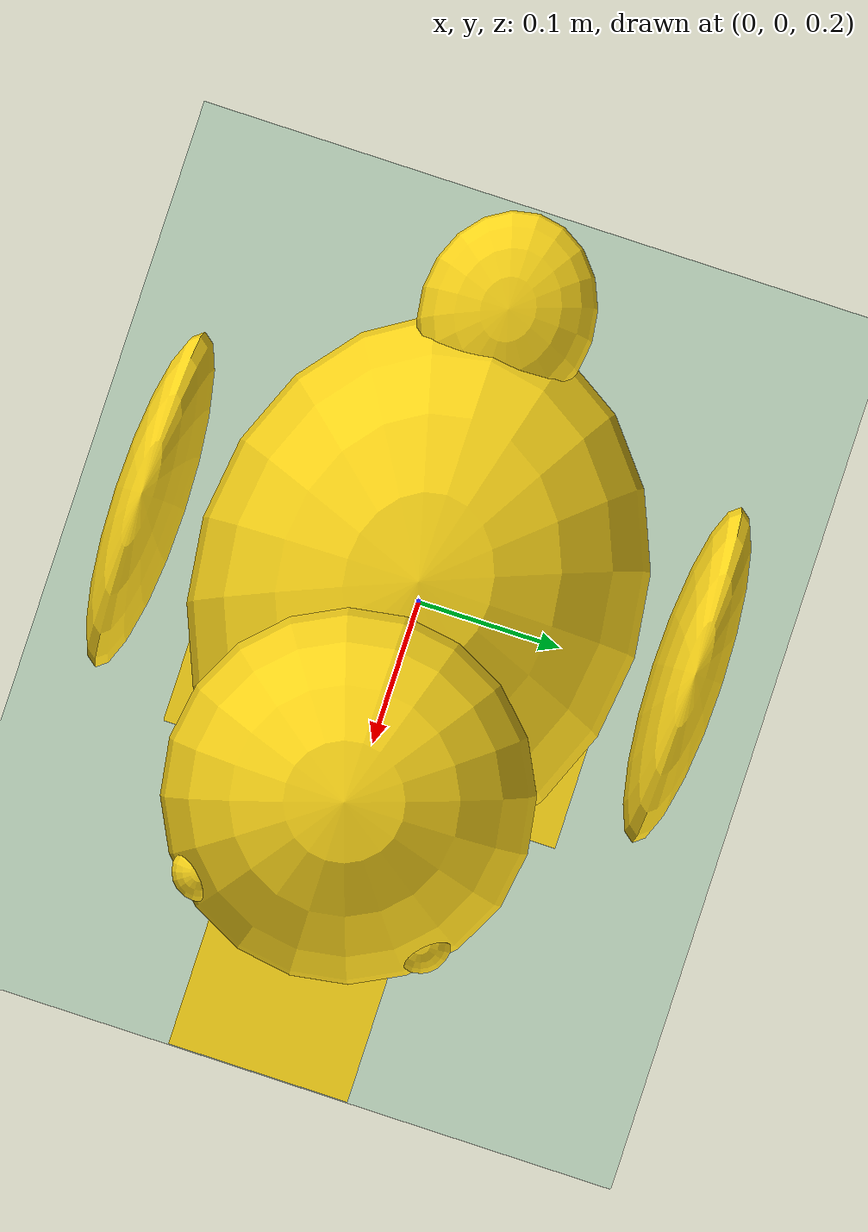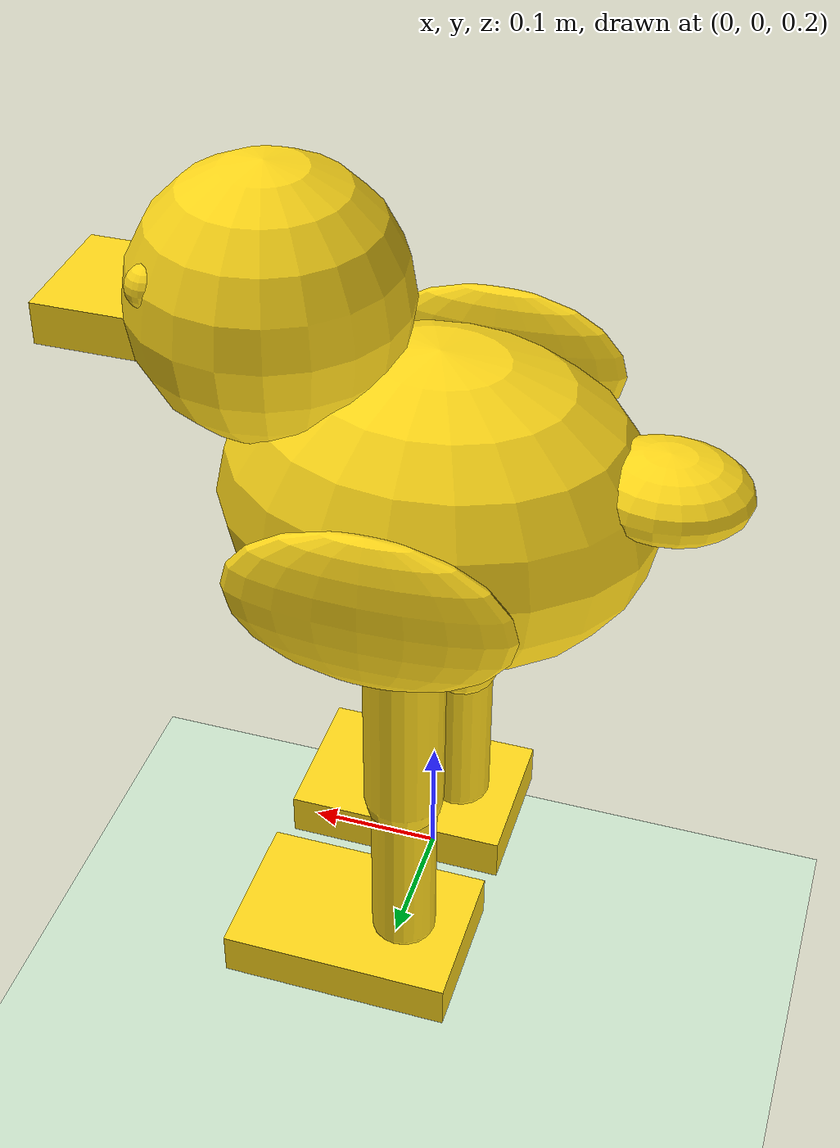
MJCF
<mujoco model="microduck">
  <compiler angle="degree" coordinate="local" inertiafromgeom="true"/>
  <default>
    <joint armature="0.01" damping="0.2" limited="true"/>
    <geom conaffinity="1" condim="3" friction="1.2 0.1 0.1" margin="0.001" rgba="1.0 0.85 0.1 1"/>
    <motor ctrllimited="true" ctrlrange="-1.0 1.0"/>
  </default>

  <option integrator="RK4" timestep="0.005" gravity="0 0 -9.81"/>

  <visual>
    <headlight ambient="0.4 0.4 0.4" diffuse="0.8 0.8 0.8" specular="0.1 0.1 0.1"/>
    <map znear="0.02"/>
  </visual>

  <asset>
    <texture builtin="gradient" height="100" rgb1="1 1 1" rgb2="0.6 0.8 1" type="skybox" width="100"/>
    <texture builtin="checker" height="100" name="texplane" rgb1="0.2 0.3 0.4" rgb2="0.1 0.15 0.2" type="2d" width="100"/>
    <material name="matplane" reflectance="0.2" shininess="1" specular="1" texrepeat="60 60" texture="texplane"/>
    <material name="duck_yellow" rgba="1.0 0.85 0.05 1"/>
    <material name="duck_orange" rgba="1.0 0.42 0.0 1"/>
    <material name="duck_eye" rgba="0.1 0.1 0.1 1"/>
    <material name="duck_wing" rgba="0.95 0.78 0.05 1"/>
  </asset>

  <worldbody>
    <light cutoff="100" diffuse="1 1 1" dir="-0 0 -1.3" directional="true" exponent="1" pos="0 0 2.5" specular=".1 .1 .1"/>
    <geom conaffinity="1" condim="3" material="matplane" name="floor" pos="0 0 0" rgba="0.8 0.9 0.8 1" size="40 40 0.1" type="plane"/>

    <!-- MicroDuck Main Torso -->
    <body name="torso" pos="0 0 0.55">
      <freejoint name="root"/>
      <!-- Main Body: Chubby Duck Torso -->
      <geom material="duck_yellow" name="torso_geom" pos="0 0 0" size="0.16 0.13 0.12" type="ellipsoid"/>

      <!-- Tail Feathers -->
      <geom material="duck_yellow" name="tail_geom" pos="-0.16 0 0.04" size="0.06 0.05 0.03" type="ellipsoid"/>

      <!-- Duck Head -->
      <body name="head" pos="0.12 0 0.14">
        <geom material="duck_yellow" name="head_geom" pos="0 0 0" size="0.1" type="sphere"/>
        <!-- Eyes -->
        <geom material="duck_eye" name="left_eye" pos="0.06 0.06 0.03" size="0.016" type="sphere"/>
        <geom material="duck_eye" name="right_eye" pos="0.06 -0.06 0.03" size="0.016" type="sphere"/>
        <!-- Cute Duck Beak (Orange Bill) -->
        <geom material="duck_orange" name="beak_geom" pos="0.1 0 -0.02" size="0.055 0.05 0.016" type="box"/>
      </body>

      <!-- Left Wing -->
      <body name="left_wing" pos="0 0.14 0.02">
        <geom material="duck_wing" name="left_wing_geom" pos="0 0.02 0" size="0.1 0.02 0.06" type="ellipsoid"/>
      </body>

      <!-- Right Wing -->
      <body name="right_wing" pos="0 -0.14 0.02">
        <geom material="duck_wing" name="right_wing_geom" pos="0 -0.02 0" size="0.1 0.02 0.06" type="ellipsoid"/>
      </body>

      <!-- ================= LEFT LEG ================= -->
      <body name="left_thigh" pos="0 0.08 -0.08">
        <joint axis="0 1 0" name="left_hip" range="-50 50" type="hinge"/>
        <geom material="duck_orange" name="left_thigh_geom" fromto="0 0 0 0 0 -0.14" size="0.03" type="capsule"/>

        <body name="left_shin" pos="0 0 -0.14">
          <joint axis="0 1 0" name="left_knee" range="-20 80" type="hinge"/>
          <geom material="duck_orange" name="left_shin_geom" fromto="0 0 0 0 0 -0.14" size="0.025" type="capsule"/>

          <body name="left_foot" pos="0 0 -0.14">
            <joint axis="0 1 0" name="left_ankle" range="-40 40" type="hinge"/>
            <!-- Flat Webbed Foot for stable duck walking -->
            <geom material="duck_orange" name="left_foot_geom" pos="0.04 0 -0.02" size="0.09 0.06 0.018" type="box"/>
          </body>
        </body>
      </body>

      <!-- ================= RIGHT LEG ================= -->
      <body name="right_thigh" pos="0 -0.08 -0.08">
        <joint axis="0 1 0" name="right_hip" range="-50 50" type="hinge"/>
        <geom material="duck_orange" name="right_thigh_geom" fromto="0 0 0 0 0 -0.14" size="0.03" type="capsule"/>

        <body name="right_shin" pos="0 0 -0.14">
          <joint axis="0 1 0" name="right_knee" range="-20 80" type="hinge"/>
          <geom material="duck_orange" name="right_shin_geom" fromto="0 0 0 0 0 -0.14" size="0.025" type="capsule"/>

          <body name="right_foot" pos="0 0 -0.14">
            <joint axis="0 1 0" name="right_ankle" range="-40 40" type="hinge"/>
            <!-- Flat Webbed Foot for stable duck walking -->
            <geom material="duck_orange" name="right_foot_geom" pos="0.04 0 -0.02" size="0.09 0.06 0.018" type="box"/>
          </body>
        </body>
      </body>

    </body>
  </worldbody>

  <!-- Actuators (6 Joint Motors: 3 on each leg) -->
  <actuator>
    <motor gear="80" joint="left_hip" name="left_hip_motor"/>
    <motor gear="80" joint="left_knee" name="left_knee_motor"/>
    <motor gear="50" joint="left_ankle" name="left_ankle_motor"/>
    <motor gear="80" joint="right_hip" name="right_hip_motor"/>
    <motor gear="80" joint="right_knee" name="right_knee_motor"/>
    <motor gear="50" joint="right_ankle" name="right_ankle_motor"/>
  </actuator>
</mujoco>
